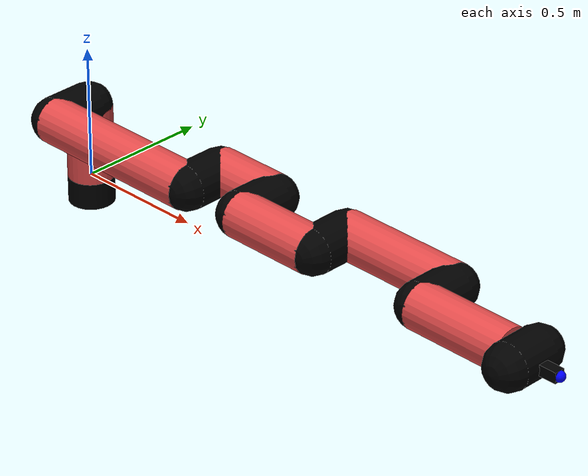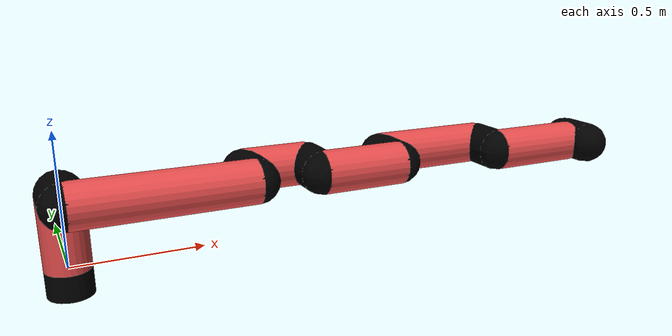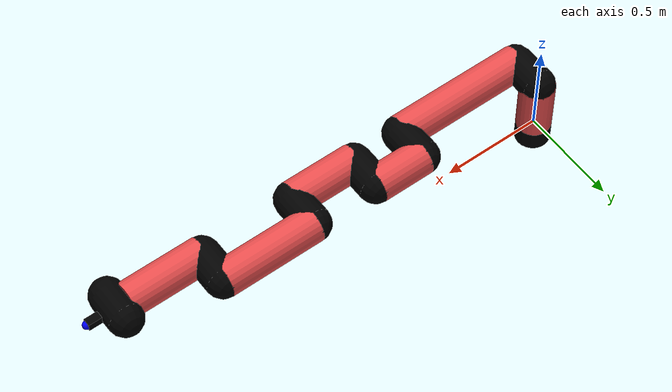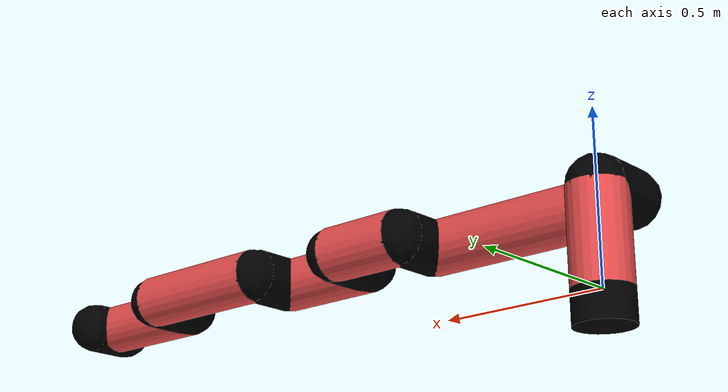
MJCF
<mujoco model="manipulator">
		<compiler angle="degree" coordinate="local" inertiafromgeom="auto" meshdir="meshes/"/>
		<option gravity="0 0 0" integrator="RK4" iterations="30" timestep="0.01"/>

		<default>
		<joint armature="1" limited="true" stiffness="10" damping="15" frictionloss="5.0"/>
		<geom conaffinity="1" condim="3" contype="1" friction=".5 .1 .1" margin="0.002"/>
		<motor ctrllimited="true"/>
		<position ctrllimited="true"/>
		</default>

		<asset>
		<texture builtin="gradient" height="100" rgb1="1.0 1.0 1.0" rgb2="1.0 1.0 1.0" type="skybox" width="100"/>
		<texture builtin="flat" height="32" name="arm_tex" rgb1="0.9 0.3 0.3" type="2d" width="32"/>
		<texture builtin="flat" height="32" name="gripper_tex" rgb1="0.0 0.0 0.0" type="cube" width="32"/>

		<material name="arm_mat" shininess="0.1" specular="0.1" texture="arm_tex"/>
		<material name="gripper_mat" shininess="1" specular="1" texture="gripper_tex"/>
		</asset>

		<worldbody>
		<light cutoff="45" diffuse=".8 .8 .8" dir="0 0.16 -1" directional="false" name="light" pos="0 -2.0 8.0" specular="0.3 0.3 0.3"/>

		<body name="base_link" pos="0 0 -0.1">
		<geom fromto="0 0 0 0 0 0.1" material="arm_mat" name="base_link" rgba="0.0 0.0 0.0 1" size="0.085" type="cylinder"/>
		</body>

		<body name="l1" pos="0 0 0">
<geom fromto="0 0 0 0 0 0.28" material="arm_mat" name="l1" rgba="0.9 0.3 0.3 1" size="0.085" type="cylinder"/>
<geom fromto="0 0 0.28 0 -0.16 0.28" material="arm_mat" name="l1_ex" rgba="0.0 0.0 0.0 1" size="0.085" type="capsule"/>
<joint axis="0 0 1" name="j1" pos="0 0 0" range="-90 90" damping="28.18" frictionloss="7.66"/>

<body name="l2" pos="0 -0.16 0.28">
<geom fromto="0 0 0 0.67 0 0" material="arm_mat" name="l2" rgba="0.9 0.3 0.3 1" size="0.085" type="cylinder"/>
<geom fromto="0.67 0 0 0.67 0.16 0" material="arm_mat" name="l2_ex" rgba="0.0 0.0 0.0 1" size="0.085" type="capsule"/>
<joint axis="0.0 1.0 0.0" name="j2" pos="0 0 0" range="-90 60" damping="36.6" frictionloss="9.91"/>

<body name="l3" pos="0.67 0.16 0">
<geom fromto="0 0 0 0.26 0 0" material="arm_mat" name="l3" rgba="0.9 0.3 0.3 1" size="0.085" type="cylinder"/>
<geom fromto="0.26 0 0 0.26 -0.16 0" material="arm_mat" name="l3_ex" rgba="0.0 0.0 0.0 1" size="0.085" type="capsule"/>
<joint axis="0.0 1.0 0.0" name="j3" pos="0 0 0" range="-30 60" damping="19.34" frictionloss="4.05"/>

<body name="l4" pos="0.26 -0.16 0">
<geom fromto="0 0 0 0.34 0 0" material="arm_mat" name="l4" rgba="0.9 0.3 0.3 1" size="0.085" type="cylinder"/>
<geom fromto="0.34 0 0 0.34 0.16 0" material="arm_mat" name="l4_ex" rgba="0.0 0.0 0.0 1" size="0.085" type="capsule"/>
<joint axis="0.0 1.0 0.0" name="j4" pos="0 0 0" range="-30 60" damping="43.74" frictionloss="13.95"/>

<body name="l5" pos="0.34 0.16 0">
<geom fromto="0 0 0 0.48 0 0" material="arm_mat" name="l5" rgba="0.9 0.3 0.3 1" size="0.085" type="cylinder"/>
<geom fromto="0.48 0 0 0.48 -0.16 0" material="arm_mat" name="l5_ex" rgba="0.0 0.0 0.0 1" size="0.085" type="capsule"/>
<joint axis="0.0 1.0 0.0" name="j5" pos="0 0 0" range="-30 60" damping="28.62" frictionloss="14.02"/>

<body name="l6" pos="0.48 -0.16 0">
<geom fromto="0 0 0 0.39 0 0" material="arm_mat" name="l6" rgba="0.9 0.3 0.3 1" size="0.085" type="cylinder"/>
<joint axis="0.0 1.0 0.0" name="j6" pos="0 0 0" range="-30 60" damping="47.55" frictionloss="7.66"/>

<body name="gripper" pos="0.39 0 0">
<geom fromto="0.05 -0.07 0 0.05 0.07 0" material="gripper_mat" name="gripper" rgba="0.0 0.0 0.0 1" size="0.085" type="capsule"/><joint axis="1 0 0" name="j7" pos="0 0 0" range="-90 90" damping="15" frictionloss="5.0"/><body name="finger" pos="0.1 0 0">
<geom fromto="0 0.0 0 0.1 0.0 0" material="gripper_mat" name="finger" rgba="0.0 0.0 0.0 1" size="0.020 0.06 0.06" type="box"/>
</body>
<site name="current" pos="0.2 0. 0.0" rgba="0. 0. 1.0 1" size="0.02" type="sphere"/>
</body>
</body>
</body>
</body>
</body>
</body>
</body>
</worldbody>
<actuator>
<motor ctrllimited="true" ctrlrange="-1.0 1.0" joint="j1" gear="70.34"/>
<motor ctrllimited="true" ctrlrange="-1.0 1.0" joint="j2" gear="94.18"/>
<motor ctrllimited="true" ctrlrange="-1.0 1.0" joint="j3" gear="58.65"/>
<motor ctrllimited="true" ctrlrange="-1.0 1.0" joint="j4" gear="81.05"/>
<motor ctrllimited="true" ctrlrange="-1.0 1.0" joint="j5" gear="71.26"/>
<motor ctrllimited="true" ctrlrange="-1.0 1.0" joint="j6" gear="48.35"/>
<motor ctrllimited="true" ctrlrange="-1.0 1.0" joint="j7" gear="80"/>
</actuator>
</mujoco>
